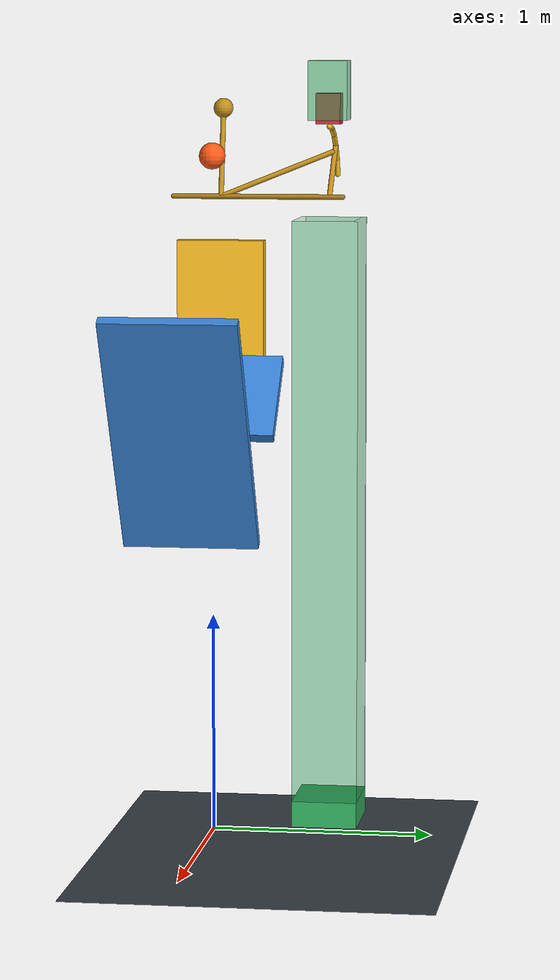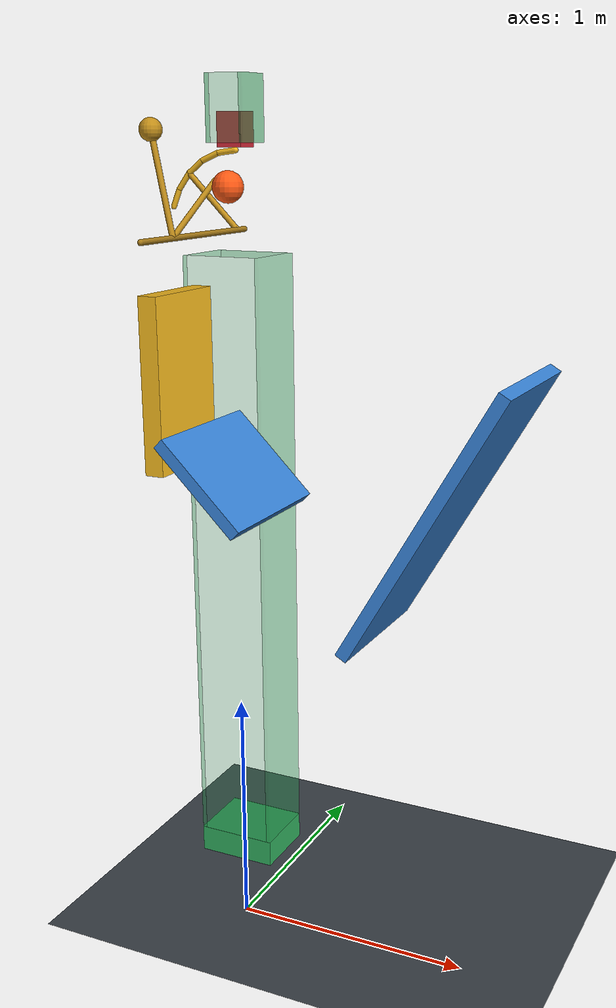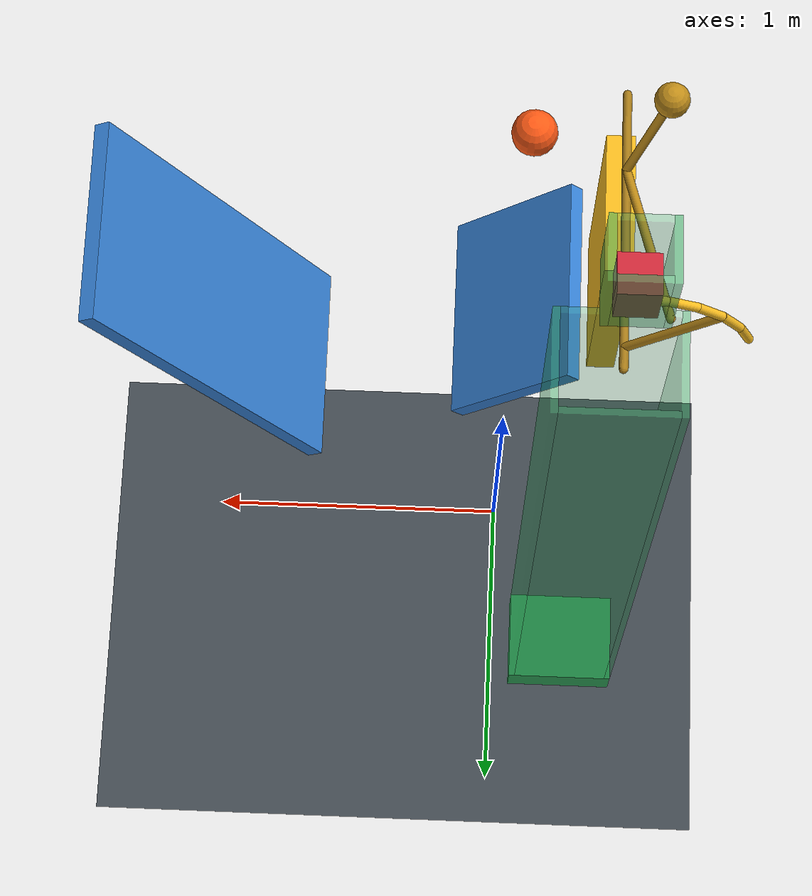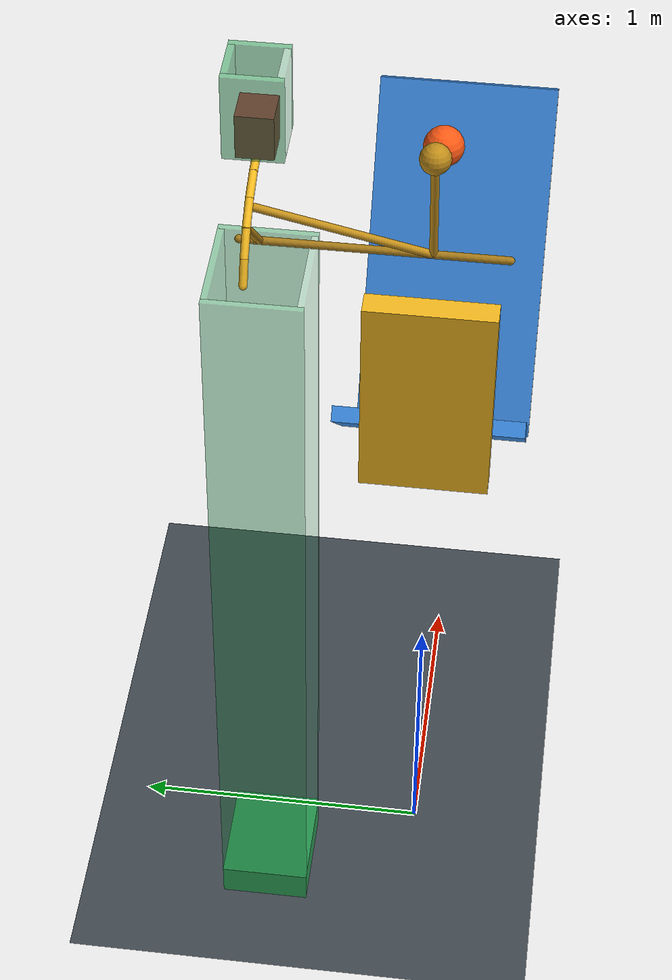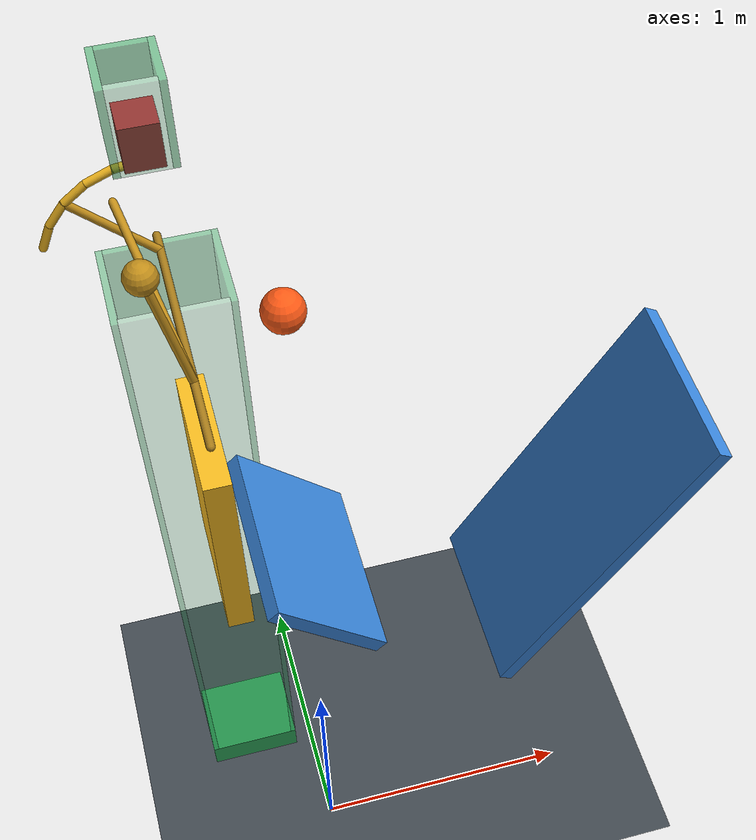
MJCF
<mujoco model="ricochet_release">
  <compiler angle="degree" autolimits="true"/>
  <option timestep="0.002" gravity="0 0 -9.81" integrator="implicitfast" solver="Newton" iterations="100" tolerance="1e-10"/>
  <size njmax="2000" nconmax="400"/>
  <visual>
    <global azimuth="135" elevation="-20"/>
  </visual>

  <worldbody>
    <light name="overhead" pos="0 -2 6" dir="0 0 -1"/>
    <camera name="overview" pos="4 -7 4" xyaxes="0.868 0.496 0 -0.155 0.271 0.950"/>

    <geom name="floor" type="plane" size="8 8 0.1" rgba="0.25 0.28 0.31 1" condim="6" friction="0.8 0.02 0.02" solref="0.015 1" solimp="0.95 0.99 0.001"/>

    <!-- The initial gap from the ball's bottom to wall1 directly below it is 1 m. -->
    <body name="ball" pos="0 0 3.095355339">
      <freejoint name="ball_free"/>
      <geom name="ball_sphere" type="sphere" size="0.06" mass="0.4" rgba="1 0.35 0.08 1" condim="6" friction="0.5 0.01 0.01" solref="0.01 1" solimp="0.95 0.99 0.001"/>
    </body>

    <!-- Low-damping normal contacts produce the two ricochets. -->
    <body name="wall1" pos="0 0 2">
      <geom name="wall1_face" type="box" size="0.23 0.30 0.025" euler="0 45 0" rgba="0.22 0.52 0.85 1" priority="2" condim="1" friction="0 0 0" solref="-30000 -1" solimp="0.99 0.99 0.001"/>
    </body>

    <body name="wall2" pos="0.90 0 1.94">
      <geom name="wall2_face" type="box" size="0.60 0.30 0.025" euler="0 -60 0" rgba="0.22 0.52 0.85 1" priority="2" condim="1" friction="0 0 0" solref="-30000 -1" solimp="0.99 0.99 0.001"/>
    </body>

    <body name="target" pos="-0.25 0 2.90">
      <joint name="target_hinge" type="hinge" axis="0 1 0" range="0 90" damping="0.025" armature="0.001" solreflimit="0.004 1" solimplimit="0.99 0.99 0.001"/>
      <geom name="target_paddle" type="box" pos="0 0 -0.55" size="0.04 0.20 0.35" mass="0.08" rgba="0.95 0.72 0.12 1" condim="3" friction="0.15 0.005 0.001" solref="0.008 1"/>
      <geom name="target_counterweight" type="sphere" pos="-0.08 0 0.40" size="0.045" mass="0.30" rgba="0.75 0.55 0.10 1"/>
      <geom name="target_counterweight_stem" type="capsule" fromto="0 0 0 -0.08 0 0.40" size="0.012" mass="0.01" rgba="0.75 0.55 0.10 1"/>
      <geom name="target_axle" type="capsule" fromto="0 -0.22 0 0 0.56 0" size="0.012" mass="0.02" rgba="0.65 0.48 0.10 1"/>
      <geom name="target_cam_brace" type="capsule" fromto="0 0 0 -0.10 0.50 0.20" size="0.012" mass="0.015" rgba="0.75 0.55 0.10 1"/>
      <geom name="target_cam_spoke" type="capsule" fromto="0 0.50 0 -0.226274 0.50 0.226274" size="0.012" mass="0.015" rgba="0.75 0.55 0.10 1"/>

      <geom name="target_cam_1" type="capsule" fromto="0 0.50 0.320000 -0.082822 0.50 0.309096" size="0.012" mass="0.008" rgba="0.95 0.72 0.12 1" condim="3" friction="0.03 0.001 0.0001" solref="0.006 1"/>
      <geom name="target_cam_2" type="capsule" fromto="-0.082822 0.50 0.309096 -0.160000 0.50 0.277128" size="0.012" mass="0.008" rgba="0.95 0.72 0.12 1" condim="3" friction="0.03 0.001 0.0001" solref="0.006 1"/>
      <geom name="target_cam_3" type="capsule" fromto="-0.160000 0.50 0.277128 -0.226274 0.50 0.226274" size="0.012" mass="0.008" rgba="0.95 0.72 0.12 1" condim="3" friction="0.03 0.001 0.0001" solref="0.006 1"/>
      <geom name="target_cam_4" type="capsule" fromto="-0.226274 0.50 0.226274 -0.277128 0.50 0.160000" size="0.012" mass="0.008" rgba="0.95 0.72 0.12 1" condim="3" friction="0.03 0.001 0.0001" solref="0.006 1"/>
      <geom name="target_cam_5" type="capsule" fromto="-0.277128 0.50 0.160000 -0.307604 0.50 0.088204" size="0.012" mass="0.008" rgba="0.95 0.72 0.12 1" condim="3" friction="0.03 0.001 0.0001" solref="0.006 1"/>
    </body>

    <body name="block" pos="-0.25 0.50 3.302">
      <freejoint name="block_free"/>
      <geom name="block_payload" type="box" size="0.055 0.055 0.070" mass="0.08" rgba="0.80 0.16 0.22 1" condim="3" friction="0.08 0.005 0.001" solref="0.008 1" solimp="0.95 0.99 0.001"/>
    </body>

    <!--
      The upper collar keeps the block over the cam.
      The gap below that collar leaves the rotating cam unobstructed.
      The tall lower bin catches and confines the released payload.
    -->
    <body name="bin" pos="-0.25 0.50 0">
      <geom name="bin_bottom" type="box" pos="0 0 0.06" size="0.18 0.15 0.06" rgba="0.18 0.65 0.35 1" condim="3" friction="0.8 0.01 0.001" solref="0.012 1"/>
      <geom name="bin_left" type="box" pos="-0.17 0 1.46" size="0.01 0.15 1.34" rgba="0.18 0.65 0.35 0.45" condim="3" friction="0.03 0.001 0.0001" solref="0.008 1"/>
      <geom name="bin_right" type="box" pos="0.17 0 1.46" size="0.01 0.15 1.34" rgba="0.18 0.65 0.35 0.45" condim="3" friction="0.03 0.001 0.0001" solref="0.008 1"/>
      <geom name="bin_front" type="box" pos="0 -0.14 1.46" size="0.16 0.01 1.34" rgba="0.18 0.65 0.35 0.25" condim="3" friction="0.03 0.001 0.0001" solref="0.008 1"/>
      <geom name="bin_back" type="box" pos="0 0.14 1.46" size="0.16 0.01 1.34" rgba="0.18 0.65 0.35 0.45" condim="3" friction="0.03 0.001 0.0001" solref="0.008 1"/>

      <geom name="bin_upper_left_guide" type="box" pos="-0.0775 0 3.385" size="0.01 0.0875 0.135" rgba="0.18 0.65 0.35 0.55" condim="3" friction="0.03 0.001 0.0001" solref="0.006 1"/>
      <geom name="bin_upper_right_guide" type="box" pos="0.0775 0 3.385" size="0.01 0.0875 0.135" rgba="0.18 0.65 0.35 0.55" condim="3" friction="0.03 0.001 0.0001" solref="0.006 1"/>
      <geom name="bin_upper_front_guide" type="box" pos="0 -0.0775 3.385" size="0.0675 0.01 0.135" rgba="0.18 0.65 0.35 0.30" condim="3" friction="0.03 0.001 0.0001" solref="0.006 1"/>
      <geom name="bin_upper_back_guide" type="box" pos="0 0.0775 3.385" size="0.0675 0.01 0.135" rgba="0.18 0.65 0.35 0.55" condim="3" friction="0.03 0.001 0.0001" solref="0.006 1"/>
    </body>
  </worldbody>

  <keyframe>
    <key name="start" qpos="0 0 3.095355339 1 0 0 0 0 -0.25 0.50 3.302 1 0 0 0" qvel="0 0 0 0 0 0 0 0 0 0 0 0 0"/>
  </keyframe>
</mujoco>
